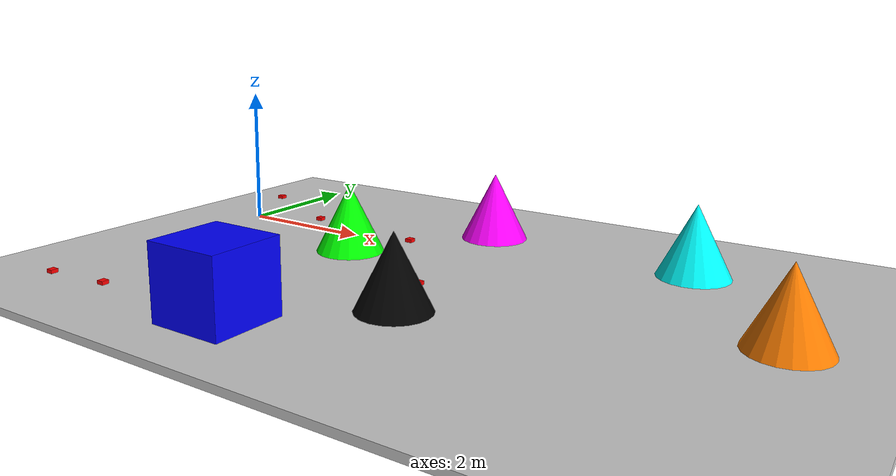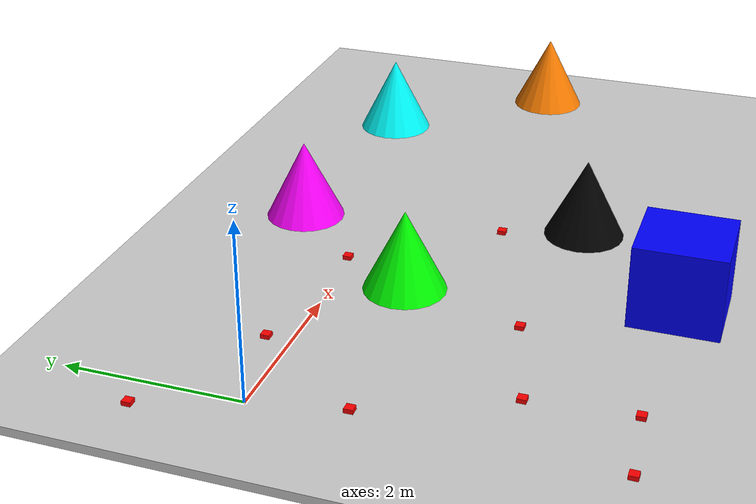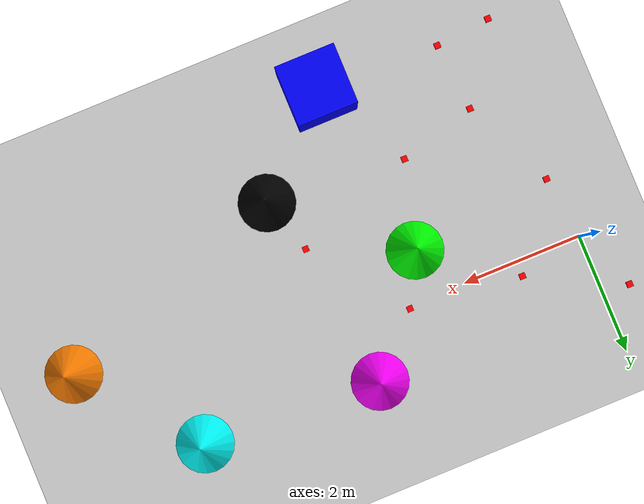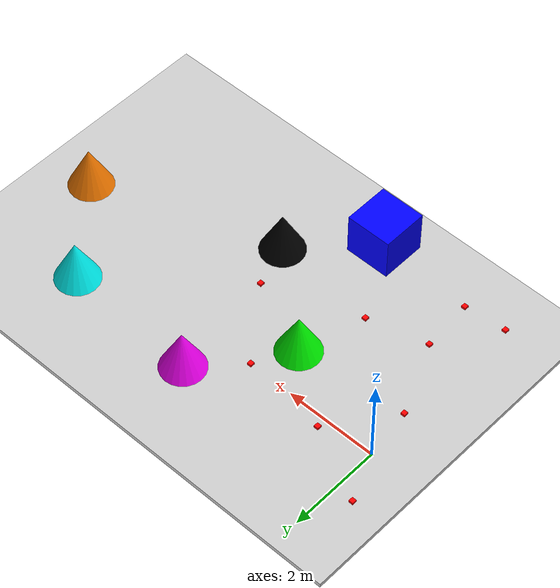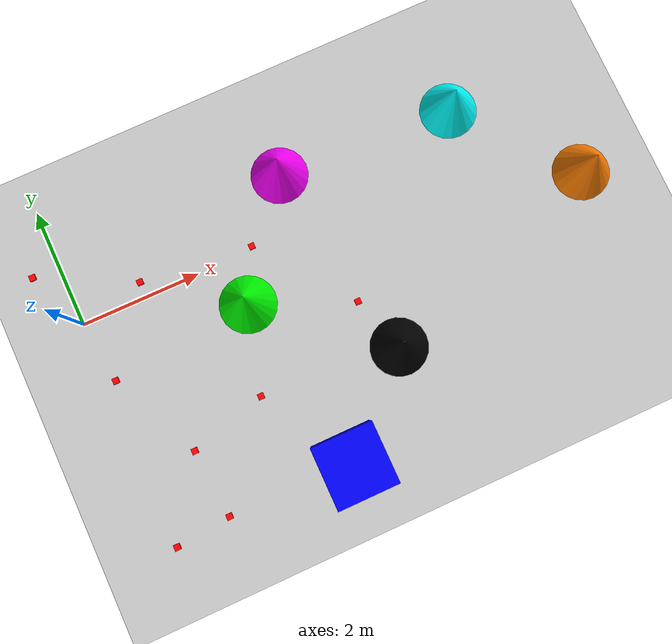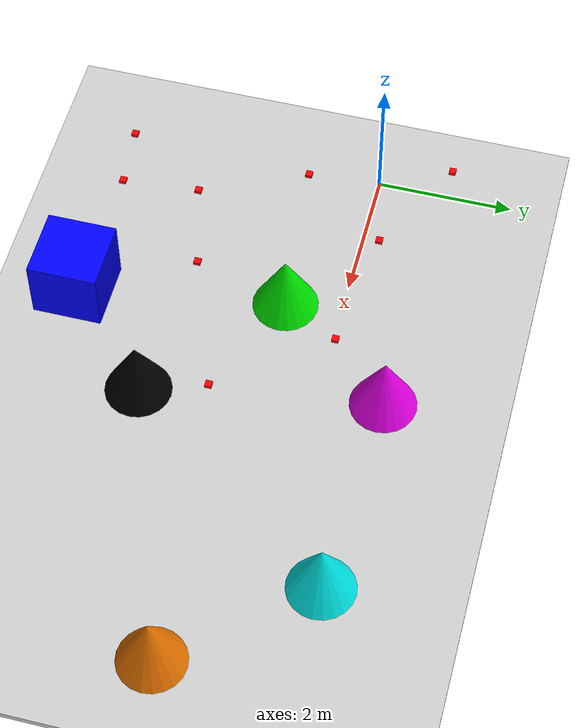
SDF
<sdf version='1.10'>
  <world name='robot_driver_world'>
    <physics name='1ms' type='ignored'>
      <max_step_size>0.001</max_step_size>
      <real_time_factor>1</real_time_factor>
      <real_time_update_rate>1000</real_time_update_rate>
    </physics>
    <plugin name='gz::sim::systems::Physics' filename='gz-sim-physics-system'/>
    <plugin name='gz::sim::systems::Sensors' filename='gz-sim-sensors-system'>
      <render_engine>ogre</render_engine>
    </plugin>
    <plugin name='gz::sim::systems::UserCommands' filename='gz-sim-user-commands-system'/>
    <plugin name='gz::sim::systems::SceneBroadcaster' filename='gz-sim-scene-broadcaster-system'/>
    <plugin name='gz::sim::systems::Contact' filename='gz-sim-contact-system'/>
    <gravity>0 0 -9.8000000000000007</gravity>
    <magnetic_field>5.5644999999999998e-06 2.2875799999999999e-05 -4.2388400000000002e-05</magnetic_field>
    <atmosphere type='adiabatic'/>
    <scene>
      <ambient>0.400000006 0.400000006 0.400000006 1</ambient>
      <background>0.699999988 0.699999988 0.699999988 1</background>
      <shadows>true</shadows>
    </scene>
    <model name='ground_plane'>
      <static>true</static>
      <link name='link'>
        <collision name='collision'>
          <geometry>
            <plane>
              <normal>0 0 1</normal>
              <size>100 100</size>
            </plane>
          </geometry>
          <surface>
            <friction>
              <ode/>
            </friction>
            <bounce/>
            <contact/>
          </surface>
        </collision>
        <visual name='visual'>
          <geometry>
            <plane>
              <normal>0 0 1</normal>
              <size>100 100</size>
            </plane>
          </geometry>
          <material>
            <ambient>0.800000012 0.800000012 0.800000012 1</ambient>
            <diffuse>0.800000012 0.800000012 0.800000012 1</diffuse>
            <specular>0.800000012 0.800000012 0.800000012 1</specular>
          </material>
        </visual>
        <pose>0 0 0 0 0 0</pose>
        <inertial>
          <pose>0 0 0 0 0 0</pose>
          <mass>1</mass>
          <inertia>
            <ixx>1</ixx>
            <ixy>0</ixy>
            <ixz>0</ixz>
            <iyy>1</iyy>
            <iyz>0</iyz>
            <izz>1</izz>
          </inertia>
        </inertial>
        <enable_wind>false</enable_wind>
      </link>
      <pose>0 0 0 0 0 0</pose>
      <self_collide>false</self_collide>
    </model>
    <model name='cone'>
      <pose>2.5363732600268438 -0.80112278462533015 0.49999999846970899 6.5729138181508515e-12 -1.3573746487752694e-05 2.9434920695967671e-11</pose>
      <link name='cone_link'>
        <inertial>
          <inertia>
            <ixx>0.074999999999999997</ixx>
            <ixy>0</ixy>
            <ixz>0</ixz>
            <iyy>0.074999999999999997</iyy>
            <iyz>0</iyz>
            <izz>0.074999999999999997</izz>
          </inertia>
          <mass>1</mass>
          <pose>0 0 0 0 0 0</pose>
        </inertial>
        <collision name='cone_collision'>
          <geometry>
            <cone>
              <radius>0.5</radius>
              <length>1</length>
            </cone>
          </geometry>
          <surface>
            <friction>
              <ode/>
            </friction>
            <bounce/>
            <contact/>
          </surface>
        </collision>
        <visual name='cone_visual'>
          <geometry>
            <cone>
              <radius>0.5</radius>
              <length>1</length>
            </cone>
          </geometry>
          <material>
            <ambient>0 1 0 1</ambient>
            <diffuse>0 1 0 1</diffuse>
            <specular>1 1 1 1</specular>
          </material>
        </visual>
        <pose>0 0 0 0 0 0</pose>
        <enable_wind>false</enable_wind>
      </link>
      <static>false</static>
      <self_collide>false</self_collide>
    </model>
    <model name='box_0'>
      <pose>3.0250799655914307 -3.766556978225708 0.49999999990199806 4.3528643514705118e-21 -7.19647729771648e-21 1.4704217161817701e-22</pose>
      <link name='box_link'>
        <inertial>
          <inertia>
            <ixx>0.16666</ixx>
            <ixy>0</ixy>
            <ixz>0</ixz>
            <iyy>0.16666</iyy>
            <iyz>0</iyz>
            <izz>0.16666</izz>
          </inertia>
          <mass>1</mass>
          <pose>0 0 0 0 0 0</pose>
        </inertial>
        <collision name='box_collision'>
          <geometry>
            <box>
              <size>1 1 1</size>
            </box>
          </geometry>
          <surface>
            <friction>
              <ode/>
            </friction>
            <bounce/>
            <contact/>
          </surface>
        </collision>
        <visual name='box_visual'>
          <geometry>
            <box>
              <size>1 1 1</size>
            </box>
          </geometry>
          <material>
            <ambient>0 0 1 1</ambient>
            <diffuse>0 0 1 1</diffuse>
            <specular>1 1 1 1</specular>
          </material>
        </visual>
        <pose>0 0 0 0 0 0</pose>
        <enable_wind>false</enable_wind>
      </link>
      <static>false</static>
      <self_collide>false</self_collide>
    </model>
    <model name='cone_1'>
      <pose>3.8625005118640274 0.93321859835144638 0.49999999832908254 1.4294517723464686e-11 -1.095599094382217e-05 7.2967956065578558e-09</pose>
      <link name='cone_link'>
        <inertial>
          <inertia>
            <ixx>0.074999999999999997</ixx>
            <ixy>0</ixy>
            <ixz>0</ixz>
            <iyy>0.074999999999999997</iyy>
            <iyz>0</iyz>
            <izz>0.074999999999999997</izz>
          </inertia>
          <mass>1</mass>
          <pose>0 0 0 0 0 0</pose>
        </inertial>
        <collision name='cone_collision'>
          <geometry>
            <cone>
              <radius>0.5</radius>
              <length>1</length>
            </cone>
          </geometry>
          <surface>
            <friction>
              <ode/>
            </friction>
            <bounce/>
            <contact/>
          </surface>
        </collision>
        <visual name='cone_visual'>
          <geometry>
            <cone>
              <radius>0.5</radius>
              <length>1</length>
            </cone>
          </geometry>
          <material>
            <ambient>1 0 1 1</ambient>
            <diffuse>1 0 1 1</diffuse>
            <specular>1 1 1 1</specular>
          </material>
        </visual>
        <pose>0 0 0 0 0 0</pose>
        <enable_wind>false</enable_wind>
      </link>
      <static>false</static>
      <self_collide>false</self_collide>
    </model>
    <model name='cone_2'>
      <pose>4.453384447351727 -2.4193280444908121 0.49999999771937531 4.9310286018203178e-12 -1.1413900008258369e-05 0.00039735288789561593</pose>
      <link name='cone_link'>
        <inertial>
          <inertia>
            <ixx>0.074999999999999997</ixx>
            <ixy>0</ixy>
            <ixz>0</ixz>
            <iyy>0.074999999999999997</iyy>
            <iyz>0</iyz>
            <izz>0.074999999999999997</izz>
          </inertia>
          <mass>1</mass>
          <pose>0 0 0 0 0 0</pose>
        </inertial>
        <collision name='cone_collision'>
          <geometry>
            <cone>
              <radius>0.5</radius>
              <length>1</length>
            </cone>
          </geometry>
          <surface>
            <friction>
              <ode/>
            </friction>
            <bounce/>
            <contact/>
          </surface>
        </collision>
        <visual name='cone_visual'>
          <geometry>
            <cone>
              <radius>0.5</radius>
              <length>1</length>
            </cone>
          </geometry>
          <material>
            <ambient>0 0 0 1</ambient>
            <diffuse>0 0 0 1</diffuse>
            <specular>1 1 1 1</specular>
          </material>
        </visual>
        <pose>0 0 0 0 0 0</pose>
        <enable_wind>false</enable_wind>
      </link>
      <static>false</static>
      <self_collide>false</self_collide>
    </model>
    <model name='cone_3'>
      <pose>6.8430671858149577 0.78498223335679773 0.49999999767414682 1.5448136740589461e-11 -8.0348490882515501e-06 1.5838780830737034e-11</pose>
      <link name='cone_link'>
        <inertial>
          <inertia>
            <ixx>0.074999999999999997</ixx>
            <ixy>0</ixy>
            <ixz>0</ixz>
            <iyy>0.074999999999999997</iyy>
            <iyz>0</iyz>
            <izz>0.074999999999999997</izz>
          </inertia>
          <mass>1</mass>
          <pose>0 0 0 0 0 0</pose>
        </inertial>
        <collision name='cone_collision'>
          <geometry>
            <cone>
              <radius>0.5</radius>
              <length>1</length>
            </cone>
          </geometry>
          <surface>
            <friction>
              <ode/>
            </friction>
            <bounce/>
            <contact/>
          </surface>
        </collision>
        <visual name='cone_visual'>
          <geometry>
            <cone>
              <radius>0.5</radius>
              <length>1</length>
            </cone>
          </geometry>
          <material>
            <ambient>0 1 1 1</ambient>
            <diffuse>0 1 1 1</diffuse>
            <specular>1 1 1 1</specular>
          </material>
        </visual>
        <pose>0 0 0 0 0 0</pose>
        <enable_wind>false</enable_wind>
      </link>
      <static>false</static>
      <self_collide>false</self_collide>
    </model>
    <model name='cone_4'>
      <pose>8.3753870428920862 -1.0539718866350367 0.49999999328581984 4.5424763573070339e-13 -6.0198071594412506e-06 3.9727298803672929e-14</pose>
      <link name='cone_link'>
        <inertial>
          <inertia>
            <ixx>0.074999999999999997</ixx>
            <ixy>0</ixy>
            <ixz>0</ixz>
            <iyy>0.074999999999999997</iyy>
            <iyz>0</iyz>
            <izz>0.074999999999999997</izz>
          </inertia>
          <mass>1</mass>
          <pose>0 0 0 0 0 0</pose>
        </inertial>
        <collision name='cone_collision'>
          <geometry>
            <cone>
              <radius>0.5</radius>
              <length>1</length>
            </cone>
          </geometry>
          <surface>
            <friction>
              <ode/>
            </friction>
            <bounce/>
            <contact/>
          </surface>
        </collision>
        <visual name='cone_visual'>
          <geometry>
            <cone>
              <radius>0.5</radius>
              <length>1</length>
            </cone>
          </geometry>
          <material>
            <ambient>1 0.5 0 1</ambient>
            <diffuse>1 0.5 0 1</diffuse>
            <specular>1 1 1 1</specular>
          </material>
        </visual>
        <pose>0 0 0 0 0 0</pose>
        <enable_wind>false</enable_wind>
      </link>
      <static>false</static>
      <self_collide>false</self_collide>
    </model>
    <model name='obstacle_1'>
      <pose>0.93528187274932861 -3.721019983291626 0.049999901152185701 3.9158531513353579e-18 7.7454060110091739e-18 3.7197256459834753e-20</pose>
      <link name='box_link'>
        <inertial>
          <inertia>
            <ixx>0.16666</ixx>
            <ixy>0</ixy>
            <ixz>0</ixz>
            <iyy>0.16666</iyy>
            <iyz>0</iyz>
            <izz>0.16666</izz>
          </inertia>
          <mass>1</mass>
          <pose>0 0 0 0 0 0</pose>
        </inertial>
        <collision name='obstacle_1_collision'>
          <geometry>
            <box>
              <size>0.10000000000000001 0.10000000000000001 0.10000000000000001</size>
            </box>
          </geometry>
          <surface>
            <friction>
              <ode/>
            </friction>
            <bounce/>
            <contact/>
          </surface>
        </collision>
        <visual name='obstacle_1_visual'>
          <geometry>
            <box>
              <size>0.10000000000000001 0.10000000000000001 0.10000000000000001</size>
            </box>
          </geometry>
          <material>
            <ambient>1 0 0 1</ambient>
            <diffuse>1 0 0 1</diffuse>
            <specular>1 1 1 1</specular>
          </material>
        </visual>
        <pose>0 0 0 0 0 0</pose>
        <enable_wind>false</enable_wind>
      </link>
      <static>false</static>
      <self_collide>false</self_collide>
    </model>
    <model name='ground_plane_1'>
      <static>true</static>
      <link name='link'>
        <collision name='collision'>
          <geometry>
            <plane>
              <normal>0 0 1</normal>
              <size>100 100</size>
            </plane>
          </geometry>
          <surface>
            <friction>
              <ode/>
            </friction>
            <bounce/>
            <contact/>
          </surface>
        </collision>
        <visual name='visual'>
          <geometry>
            <plane>
              <normal>0 0 1</normal>
              <size>100 100</size>
            </plane>
          </geometry>
          <material>
            <ambient>0.800000012 0.800000012 0.800000012 1</ambient>
            <diffuse>0.800000012 0.800000012 0.800000012 1</diffuse>
            <specular>0.800000012 0.800000012 0.800000012 1</specular>
          </material>
        </visual>
        <pose>0 0 0 0 0 0</pose>
        <inertial>
          <pose>0 0 0 0 0 0</pose>
          <mass>1</mass>
          <inertia>
            <ixx>1</ixx>
            <ixy>0</ixy>
            <ixz>0</ixz>
            <iyy>1</iyy>
            <iyz>0</iyz>
            <izz>1</izz>
          </inertia>
        </inertial>
        <enable_wind>false</enable_wind>
      </link>
      <pose>-0.51322870379034136 -3.231236988363309 0 0 0 0</pose>
      <self_collide>false</self_collide>
    </model>
    <model name='obstacle_1_1'>
      <pose>0.013356563008388056 -3.8117073265420482 0.049999901152185278 3.9376194225938313e-18 7.6919996772288558e-18 3.7170246867682256e-20</pose>
      <link name='box_link'>
        <inertial>
          <inertia>
            <ixx>0.16666</ixx>
            <ixy>0</ixy>
            <ixz>0</ixz>
            <iyy>0.16666</iyy>
            <iyz>0</iyz>
            <izz>0.16666</izz>
          </inertia>
          <mass>1</mass>
          <pose>0 0 0 0 0 0</pose>
        </inertial>
        <collision name='obstacle_1_collision'>
          <geometry>
            <box>
              <size>0.10000000000000001 0.10000000000000001 0.10000000000000001</size>
            </box>
          </geometry>
          <surface>
            <friction>
              <ode/>
            </friction>
            <bounce/>
            <contact/>
          </surface>
        </collision>
        <visual name='obstacle_1_visual'>
          <geometry>
            <box>
              <size>0.10000000000000001 0.10000000000000001 0.10000000000000001</size>
            </box>
          </geometry>
          <material>
            <ambient>1 0 0 1</ambient>
            <diffuse>1 0 0 1</diffuse>
            <specular>1 1 1 1</specular>
          </material>
        </visual>
        <pose>0 0 0 0 0 0</pose>
        <enable_wind>false</enable_wind>
      </link>
      <static>false</static>
      <self_collide>false</self_collide>
    </model>
    <model name='obstacle_1_2'>
      <pose>0.8416714580967537 -2.5757948134049022 0.049999901152185278 3.9376962056216585e-18 7.69307262342453e-18 3.7173909086980559e-20</pose>
      <link name='box_link'>
        <inertial>
          <inertia>
            <ixx>0.16666</ixx>
            <ixy>0</ixy>
            <ixz>0</ixz>
            <iyy>0.16666</iyy>
            <iyz>0</iyz>
            <izz>0.16666</izz>
          </inertia>
          <mass>1</mass>
          <pose>0 0 0 0 0 0</pose>
        </inertial>
        <collision name='obstacle_1_collision'>
          <geometry>
            <box>
              <size>0.10000000000000001 0.10000000000000001 0.10000000000000001</size>
            </box>
          </geometry>
          <surface>
            <friction>
              <ode/>
            </friction>
            <bounce/>
            <contact/>
          </surface>
        </collision>
        <visual name='obstacle_1_visual'>
          <geometry>
            <box>
              <size>0.10000000000000001 0.10000000000000001 0.10000000000000001</size>
            </box>
          </geometry>
          <material>
            <ambient>1 0 0 1</ambient>
            <diffuse>1 0 0 1</diffuse>
            <specular>1 1 1 1</specular>
          </material>
        </visual>
        <pose>0 0 0 0 0 0</pose>
        <enable_wind>false</enable_wind>
      </link>
      <static>false</static>
      <self_collide>false</self_collide>
    </model>
    <model name='obstacle_1_4'>
      <pose>4.1581422306674831 -1.488395035635325 0.049999901152185278 3.9377765141972875e-18 7.6950985280545685e-18 3.7171162566952042e-20</pose>
      <link name='box_link'>
        <inertial>
          <inertia>
            <ixx>0.16666</ixx>
            <ixy>0</ixy>
            <ixz>0</ixz>
            <iyy>0.16666</iyy>
            <iyz>0</iyz>
            <izz>0.16666</izz>
          </inertia>
          <mass>1</mass>
          <pose>0 0 0 0 0 0</pose>
        </inertial>
        <collision name='obstacle_1_collision'>
          <geometry>
            <box>
              <size>0.10000000000000001 0.10000000000000001 0.10000000000000001</size>
            </box>
          </geometry>
          <surface>
            <friction>
              <ode/>
            </friction>
            <bounce/>
            <contact/>
          </surface>
        </collision>
        <visual name='obstacle_1_visual'>
          <geometry>
            <box>
              <size>0.10000000000000001 0.10000000000000001 0.10000000000000001</size>
            </box>
          </geometry>
          <material>
            <ambient>1 0 0 1</ambient>
            <diffuse>1 0 0 1</diffuse>
            <specular>1 1 1 1</specular>
          </material>
        </visual>
        <pose>0 0 0 0 0 0</pose>
        <enable_wind>false</enable_wind>
      </link>
      <static>false</static>
      <self_collide>false</self_collide>
    </model>
    <model name='obstacle_1_5'>
      <pose>0.13756405494454182 -1.0513805918298864 0.049999901152185278 3.9453594697948961e-18 7.6901497063274743e-18 3.7168130591222518e-20</pose>
      <link name='box_link'>
        <inertial>
          <inertia>
            <ixx>0.16666</ixx>
            <ixy>0</ixy>
            <ixz>0</ixz>
            <iyy>0.16666</iyy>
            <iyz>0</iyz>
            <izz>0.16666</izz>
          </inertia>
          <mass>1</mass>
          <pose>0 0 0 0 0 0</pose>
        </inertial>
        <collision name='obstacle_1_collision'>
          <geometry>
            <box>
              <size>0.10000000000000001 0.10000000000000001 0.10000000000000001</size>
            </box>
          </geometry>
          <surface>
            <friction>
              <ode/>
            </friction>
            <bounce/>
            <contact/>
          </surface>
        </collision>
        <visual name='obstacle_1_visual'>
          <geometry>
            <box>
              <size>0.10000000000000001 0.10000000000000001 0.10000000000000001</size>
            </box>
          </geometry>
          <material>
            <ambient>1 0 0 1</ambient>
            <diffuse>1 0 0 1</diffuse>
            <specular>1 1 1 1</specular>
          </material>
        </visual>
        <pose>0 0 0 0 0 0</pose>
        <enable_wind>false</enable_wind>
      </link>
      <static>false</static>
      <self_collide>false</self_collide>
    </model>
    <model name='obstacle_1_6'>
      <pose>1.0996535508002552 0.24602853746299003 0.049999901152185278 3.9453958552831698e-18 7.6900072206275729e-18 3.7172416794418986e-20</pose>
      <link name='box_link'>
        <inertial>
          <inertia>
            <ixx>0.16666</ixx>
            <ixy>0</ixy>
            <ixz>0</ixz>
            <iyy>0.16666</iyy>
            <iyz>0</iyz>
            <izz>0.16666</izz>
          </inertia>
          <mass>1</mass>
          <pose>0 0 0 0 0 0</pose>
        </inertial>
        <collision name='obstacle_1_collision'>
          <geometry>
            <box>
              <size>0.10000000000000001 0.10000000000000001 0.10000000000000001</size>
            </box>
          </geometry>
          <surface>
            <friction>
              <ode/>
            </friction>
            <bounce/>
            <contact/>
          </surface>
        </collision>
        <visual name='obstacle_1_visual'>
          <geometry>
            <box>
              <size>0.10000000000000001 0.10000000000000001 0.10000000000000001</size>
            </box>
          </geometry>
          <material>
            <ambient>1 0 0 1</ambient>
            <diffuse>1 0 0 1</diffuse>
            <specular>1 1 1 1</specular>
          </material>
        </visual>
        <pose>0 0 0 0 0 0</pose>
        <enable_wind>false</enable_wind>
      </link>
      <static>false</static>
      <self_collide>false</self_collide>
    </model>
    <model name='obstacle_1_7'>
      <pose>2.9735159531075981 0.039177734632563022 0.049999901152185278 3.9447443518316567e-18 7.705324462983486e-18 3.7175843135111715e-20</pose>
      <link name='box_link'>
        <inertial>
          <inertia>
            <ixx>0.16666</ixx>
            <ixy>0</ixy>
            <ixz>0</ixz>
            <iyy>0.16666</iyy>
            <iyz>0</iyz>
            <izz>0.16666</izz>
          </inertia>
          <mass>1</mass>
          <pose>0 0 0 0 0 0</pose>
        </inertial>
        <collision name='obstacle_1_collision'>
          <geometry>
            <box>
              <size>0.10000000000000001 0.10000000000000001 0.10000000000000001</size>
            </box>
          </geometry>
          <surface>
            <friction>
              <ode/>
            </friction>
            <bounce/>
            <contact/>
          </surface>
        </collision>
        <visual name='obstacle_1_visual'>
          <geometry>
            <box>
              <size>0.10000000000000001 0.10000000000000001 0.10000000000000001</size>
            </box>
          </geometry>
          <material>
            <ambient>1 0 0 1</ambient>
            <diffuse>1 0 0 1</diffuse>
            <specular>1 1 1 1</specular>
          </material>
        </visual>
        <pose>0 0 0 0 0 0</pose>
        <enable_wind>false</enable_wind>
      </link>
      <static>false</static>
      <self_collide>false</self_collide>
    </model>
    <model name='obstacle_1_8'>
      <pose>2.1315328186118649 -2.2259022002784734 0.049999901152185278 3.9419464567571984e-18 7.6933586260454131e-18 3.716253038745501e-20</pose>
      <link name='box_link'>
        <inertial>
          <inertia>
            <ixx>0.16666</ixx>
            <ixy>0</ixy>
            <ixz>0</ixz>
            <iyy>0.16666</iyy>
            <iyz>0</iyz>
            <izz>0.16666</izz>
          </inertia>
          <mass>1</mass>
          <pose>0 0 0 0 0 0</pose>
        </inertial>
        <collision name='obstacle_1_collision'>
          <geometry>
            <box>
              <size>0.10000000000000001 0.10000000000000001 0.10000000000000001</size>
            </box>
          </geometry>
          <surface>
            <friction>
              <ode/>
            </friction>
            <bounce/>
            <contact/>
          </surface>
        </collision>
        <visual name='obstacle_1_visual'>
          <geometry>
            <box>
              <size>0.10000000000000001 0.10000000000000001 0.10000000000000001</size>
            </box>
          </geometry>
          <material>
            <ambient>1 0 0 1</ambient>
            <diffuse>1 0 0 1</diffuse>
            <specular>1 1 1 1</specular>
          </material>
        </visual>
        <pose>0 0 0 0 0 0</pose>
        <enable_wind>false</enable_wind>
      </link>
      <static>false</static>
      <self_collide>false</self_collide>
    </model>
    <model name='obstacle_1_3'>
      <pose>-0.44637602705250679 1.0239373472672866 0.049999901152185278 3.9183953316390883e-18 7.7378141686947243e-18 3.7207537265826434e-20</pose>
      <link name='box_link'>
        <inertial>
          <inertia>
            <ixx>0.16666</ixx>
            <ixy>0</ixy>
            <ixz>0</ixz>
            <iyy>0.16666</iyy>
            <iyz>0</iyz>
            <izz>0.16666</izz>
          </inertia>
          <mass>1</mass>
          <pose>0 0 0 0 0 0</pose>
        </inertial>
        <collision name='obstacle_1_collision'>
          <geometry>
            <box>
              <size>0.10000000000000001 0.10000000000000001 0.10000000000000001</size>
            </box>
          </geometry>
          <surface>
            <friction>
              <ode/>
            </friction>
            <bounce/>
            <contact/>
          </surface>
        </collision>
        <visual name='obstacle_1_visual'>
          <geometry>
            <box>
              <size>0.10000000000000001 0.10000000000000001 0.10000000000000001</size>
            </box>
          </geometry>
          <material>
            <ambient>1 0 0 1</ambient>
            <diffuse>1 0 0 1</diffuse>
            <specular>1 1 1 1</specular>
          </material>
        </visual>
        <pose>0 0 0 0 0 0</pose>
        <enable_wind>false</enable_wind>
      </link>
      <static>false</static>
      <self_collide>false</self_collide>
    </model>
    <light name='sun' type='directional'>
      <pose>0 0 10 0 0 0</pose>
      <cast_shadows>true</cast_shadows>
      <intensity>1</intensity>
      <direction>-0.5 0.10000000000000001 -0.90000000000000002</direction>
      <diffuse>0.800000012 0.800000012 0.800000012 1</diffuse>
      <specular>0.200000003 0.200000003 0.200000003 1</specular>
      <attenuation>
        <range>1000</range>
        <linear>0.0099999997764825821</linear>
        <constant>0.89999997615814209</constant>
        <quadratic>0.0010000000474974513</quadratic>
      </attenuation>
      <spot>
        <inner_angle>0</inner_angle>
        <outer_angle>0</outer_angle>
        <falloff>0</falloff>
      </spot>
    </light>
  </world>
</sdf>
